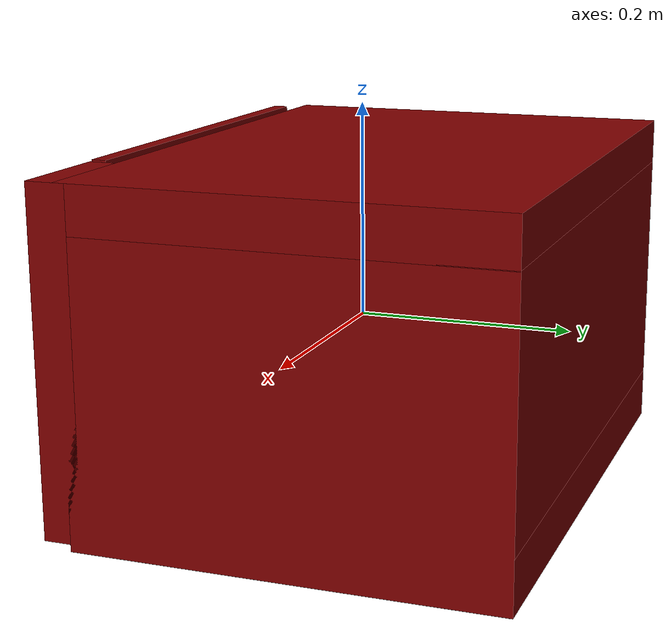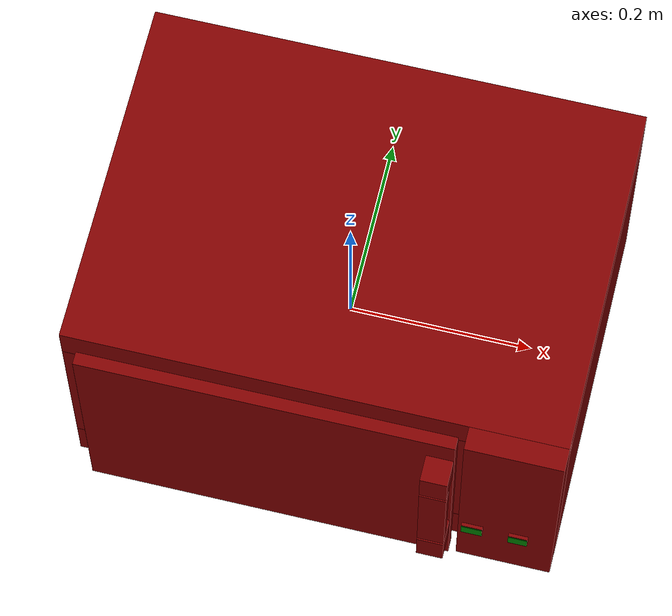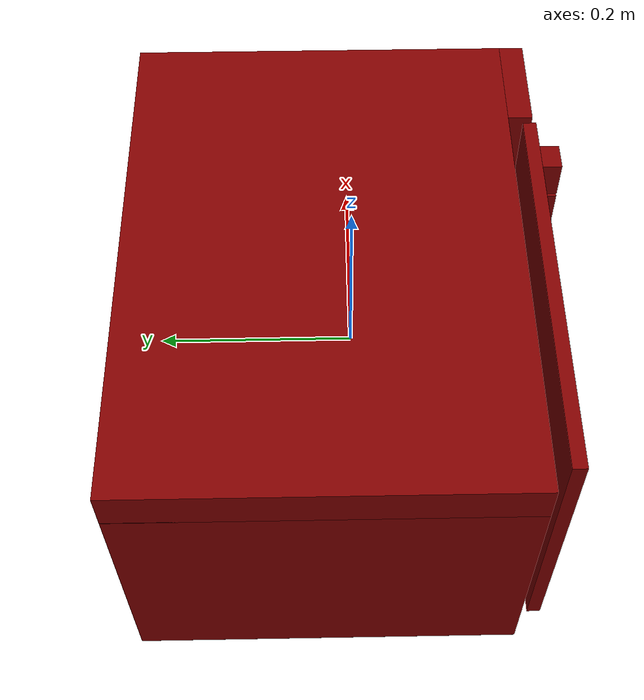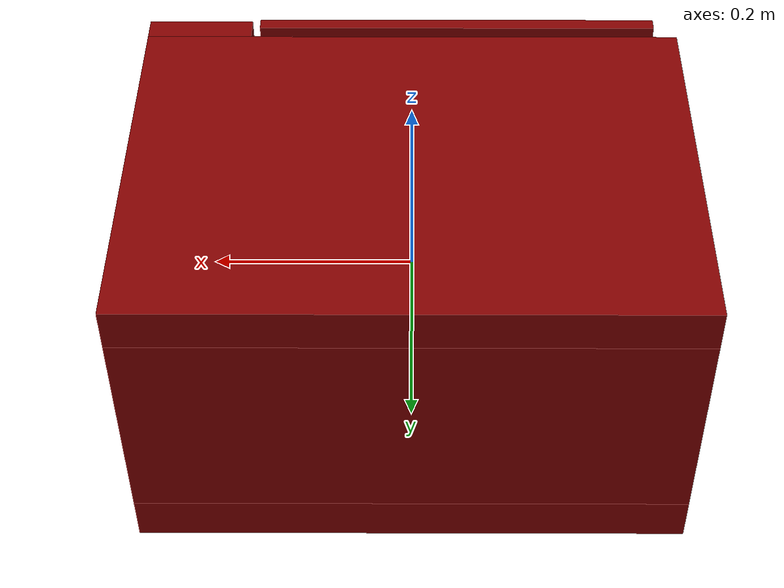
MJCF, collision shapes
<mujoco model="model">
  <compiler angle="radian"/>
  <asset>
    <mesh file="visuals/door.obj" name="door_vis"/>
    <mesh file="visuals/door_Clear.obj" name="door_Clear_vis"/>
    <mesh file="visuals/Body001.obj" name="Body001_vis"/>
    <mesh file="visuals/Button001.obj" name="Button001_vis"/>
    <mesh file="visuals/Button002.obj" name="Button002_vis"/>
    <mesh file="visuals/Disc001.obj" name="Disc001_vis"/>
    <texture file="visuals/T_BC001.png" name="Body001_material" type="2d"/>
    <material name="Body001_material" rgba="1 1 1 1.0" texture="Body001_material" shininess="2" specular="2"/>
    <texture file="visuals/T_BC001.png" name="door_material" type="2d"/>
    <material name="door_material" rgba="1 1 1 1.0" texture="door_material" shininess="2" specular="2"/>
    <material name="door_Clear_material" rgba="0.012270155362784863 0.012270155362784863 0.012270155362784863 0.8397825360298157" shininess="1" specular="1"/>
    <texture file="visuals/T_BC001.png" name="Button001_material" type="2d"/>
    <material name="Button001_material" rgba="1 1 1 1.0" texture="Button001_material" shininess="0.141421377658844" specular="0.3103448502657381"/>
    <texture file="visuals/T_BC001.png" name="Button002_material" type="2d"/>
    <material name="Button002_material" rgba="1 1 1 1.0" texture="Button002_material" shininess="0.141421377658844" specular="0.3103448502657381"/>
    <texture file="visuals/T_BC001.png" name="Disc001_material" type="2d"/>
    <material name="Disc001_material" rgba="1 1 1 1.0" texture="Disc001_material" shininess="1" specular="1"/>
  </asset>
  <default>
    <default class="visual">
      <geom conaffinity="0" contype="0" group="1" type="mesh"/>
    </default>
    <default class="collision">
      <geom group="0" rgba="0.5 0 0 0.5"/>
    </default>
    <default class="spawn">
      <geom group="0" rgba="1 1 1 0.5" contype="0" conaffinity="0"/>
      <site group="0" rgba="1 1 1 0.5"/>
    </default>
    <default class="region">
      <geom group="1" conaffinity="0" contype="0" rgba="0 1 0 0"/>
    </default>
  </default>
  <worldbody>
    <body>
      <body name="object">
        <geom class="collision" type="box" pos="-0.053948815912008286 0.00721850385889411 -0.09509222954511642" size="0.13166764378547668 0.13166764378547668 0.0021522443275898695" quat="1.0 0.0 0.0 0.0" name="tray" rgba="0 1 0 0.5"/>
        <geom class="collision" type="box" pos="0.23246632516384125 -0.19946980476379395 -0.05689051374793053" size="0.010617456398904324 0.00027986132772639394 0.007955159060657024" quat="1.0 0.0 0.0 0.0" name="start_button" rgba="0.0 0.5 0 0.5"/>
        <geom class="collision" type="box" pos="0.1815623790025711 -0.19946980476379395 -0.05655767768621445" size="0.01157171931117773 0.0002798614150378853 0.007955159060657024" quat="1.0 0.0 0.0 0.0" name="stop_button" rgba="0.0 0.5 0 0.5"/>
        <geom mesh="Body001_vis" type="mesh" solimp="0.998 0.998 0.001" solref="0.001 1" density="100" friction="0.95 0.3 0.1" class="visual" material="Body001_material"/>
        <geom class="collision" type="box" pos="3.026798367500305e-09 0.028110068291425705 0.1366085708141327" size="0.2709481418132782 0.19487737119197845 0.02329542674124241" quat="1.0 0.0 0.0 0.0"/>
        <geom class="collision" type="box" pos="-0.24649880826473236 0.028110038489103317 -0.021508557721972466" size="0.024449609220027924 0.19487740099430084 0.13776856660842896" quat="1.0 0.0 0.0 0.0"/>
        <geom class="collision" type="box" pos="0.19384488463401794 0.028110068291425705 -0.021508557721972466" size="0.07710346579551697 0.194877490401268 0.13776859641075134" quat="1.0 0.0 0.0 0.0"/>
        <geom class="collision" type="box" pos="-6.868503987789154e-09 0.028110068291425705 -0.13163922727108002" size="0.2709481418132782 0.19487756490707397 0.027739325538277626" quat="1.0 0.0 0.0 0.0"/>
        <geom class="collision" type="box" pos="-6.868503987789154e-09 0.19042719900608063 0.0032751087564975023" size="0.2709481418132782 0.0325612835586071 0.11367622017860413" quat="1.0 0.0 0.0 0.0"/>
        <geom class="collision" type="box" pos="0.21813222765922546 -0.17393672466278076 0.0036033657379448414" size="0.05281614139676094 0.018024178221821785 0.15630051493644714" quat="1.0 0.0 0.0 0.0"/>
        <body name="door">
          <joint axis="0.0 0.0 1.0" pos="-0.2574526071548462 -0.1819857656955719 0.004441767930984497" limited="true" name="microjoint" range="-1.5707963267948966 0.0" type="hinge" damping="1" frictionloss="1" armature=".01" stiffness="0.05"/>
          <geom mesh="door_vis" type="mesh" solimp="0.998 0.998 0.001" solref="0.001 1" density="100" friction="0.95 0.3 0.1" class="visual" material="door_material"/>
          <geom class="collision" type="box" pos="-0.045881107449531555 -0.1879672259092331 0.004935173317790031" size="0.20303361117839813 0.006920710206031799 0.15533727407455444" quat="1.0 0.0 0.0 0.0"/>
          <geom class="collision" type="box" pos="0.14146743714809418 -0.20280475914478302 0.1052076667547226" size="0.014644913375377655 0.0205366313457489 0.02123347856104374" quat="1.0 0.0 0.0 0.0"/>
          <geom class="collision" type="box" pos="0.14146743714809418 -0.20361050963401794 -0.07204311341047287" size="0.014644913375377655 0.020746484398841858 0.02141886204481125" quat="1.0 0.0 0.0 0.0"/>
          <geom class="collision" type="box" pos="0.14146743714809418 -0.21701546013355255 0.016374727711081505" size="0.014644913375377655 0.0065969196148216724 0.06424761563539505" quat="1.0 0.0 0.0 0.0" name="door_handle"/>
          <body name="door_Clear">
            <geom mesh="door_Clear_vis" type="mesh" solimp="0.998 0.998 0.001" solref="0.001 1" density="100" friction="0.95 0.3 0.1" class="visual" material="door_Clear_material"/>
            <geom class="collision" type="box" pos="-0.05269811302423477 -0.18954874575138092 0.020522303879261017" size="0.16385461390018463 0.0018168184906244278 0.08685800433158875" quat="1.0 0.0 0.0 0.0"/>
          </body>
        </body>
        <body name="Button001">
          <joint axis="0.0 1.0 0.0" pos="0.18114350736141205 -0.1946958601474762 -0.05697348341345787" limited="true" name="Button001_joint" range="0.0 0.003" type="slide" damping="1" frictionloss="1" armature=".01" stiffness="0.05"/>
          <geom mesh="Button001_vis" type="mesh" solimp="0.998 0.998 0.001" solref="0.001 1" density="100" friction="0.95 0.3 0.1" class="visual" material="Button001_material"/>
          <geom class="collision" type="box" pos="0.1815623790025711 -0.19658896327018738 -0.05655767768621445" size="0.01157171931117773 0.001951877260580659 0.007955159060657024" quat="1.0 0.0 0.0 0.0"/>
        </body>
        <body name="Button002">
          <joint axis="0.0 1.0 0.0" pos="0.23229819536209106 -0.19503822922706604 -0.05696532875299454" limited="true" name="Button002_joint" range="0.0 0.003" type="slide" damping="1" frictionloss="1" armature=".01" stiffness="0.05"/>
          <geom mesh="Button002_vis" type="mesh" solimp="0.998 0.998 0.001" solref="0.001 1" density="100" friction="0.95 0.3 0.1" class="visual" material="Button002_material"/>
          <geom class="collision" type="box" pos="0.23246632516384125 -0.19658896327018738 -0.05689051374793053" size="0.010617456398904324 0.001951877260580659 0.007955159060657024" quat="1.0 0.0 0.0 0.0"/>
        </body>
        <body name="Disc001">
          <joint axis="0.0 0.0 -1.0" pos="-0.05321287363767624 0.00750887393951416 -0.09866394102573395" limited="false" name="Disc001_joint" range="0 360" type="hinge" damping="1" frictionloss="1" armature=".01" stiffness="0.05"/>
          <geom mesh="Disc001_vis" type="mesh" solimp="0.998 0.998 0.001" solref="0.001 1" density="100" friction="0.95 0.3 0.1" class="visual" material="Disc001_material"/>
          <geom class="collision" type="cylinder" pos="-0.053948815912008286 0.00721850385889411 -0.10085192322731018" size="0.1316681206226349 0.001950909267179668" quat="1.0 0.0 0.0 0.0"/>
        </body>
        <geom class="region" name="reg_main" type="box" pos="-7.450580596923828e-09 0.01356690376996994 0.0" size="0.2709484398365021 0.20942085981369019 0.15990403294563293"/>
        <geom class="region" name="reg_int" type="box" pos="-0.05183784291148186 -0.0012772679328918457 0.004606325179338455" size="0.16899896040558815 0.16266408562660217 0.10769542679190636"/>
      </body>
    </body>
  </worldbody>
  <actuator>
    <motor name="microjoint_actuator" joint="microjoint" gear="10"/>
    <motor name="Button001_joint_actuator" joint="Button001_joint" gear="0.5"/>
    <motor name="Button002_joint_actuator" joint="Button002_joint" gear="0.5"/>
    <motor name="Disc001_joint_actuator" joint="Disc001_joint" gear="10"/>
  </actuator>
</mujoco>
